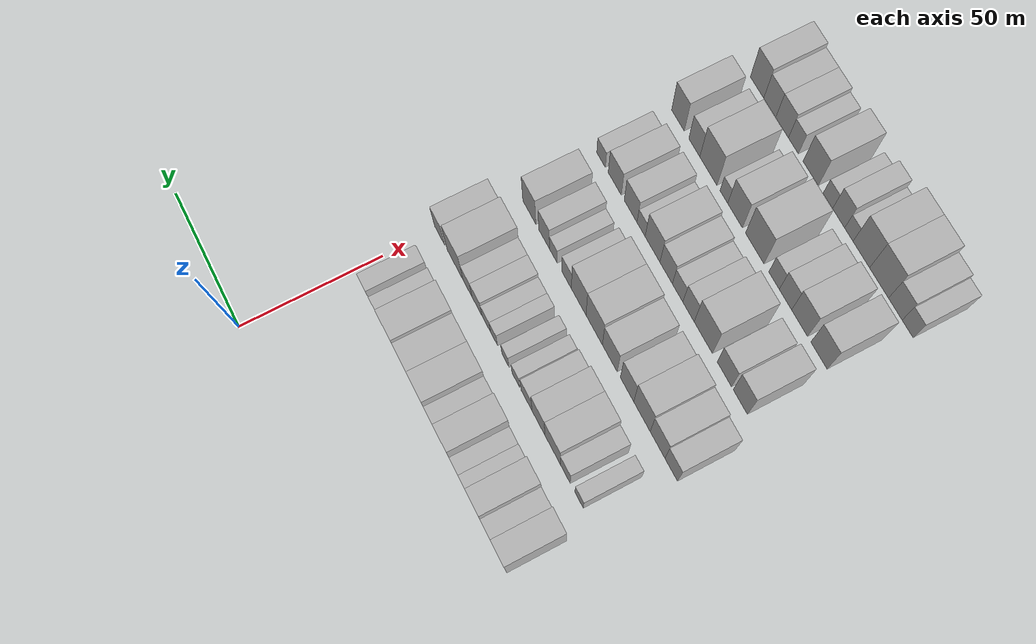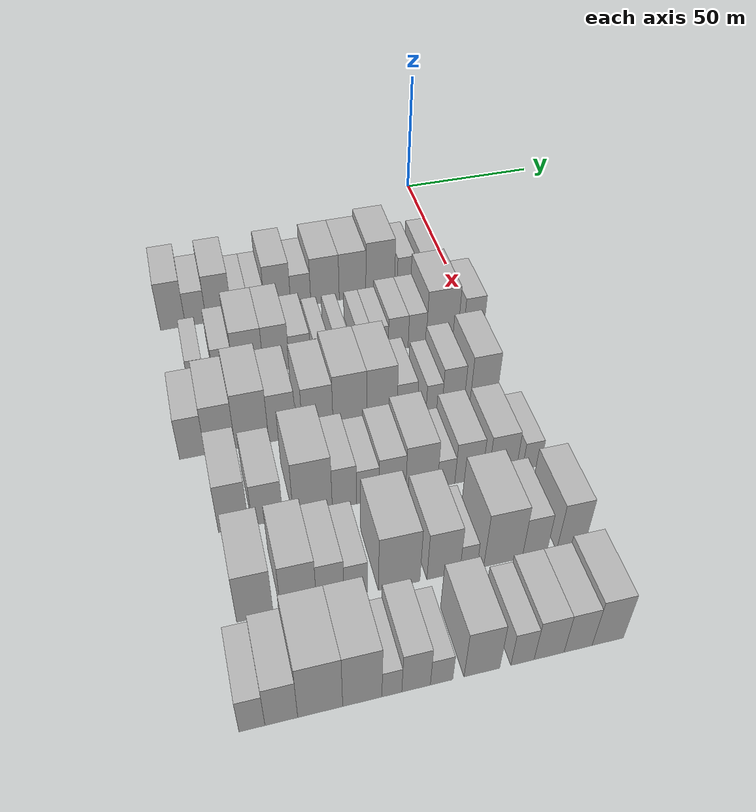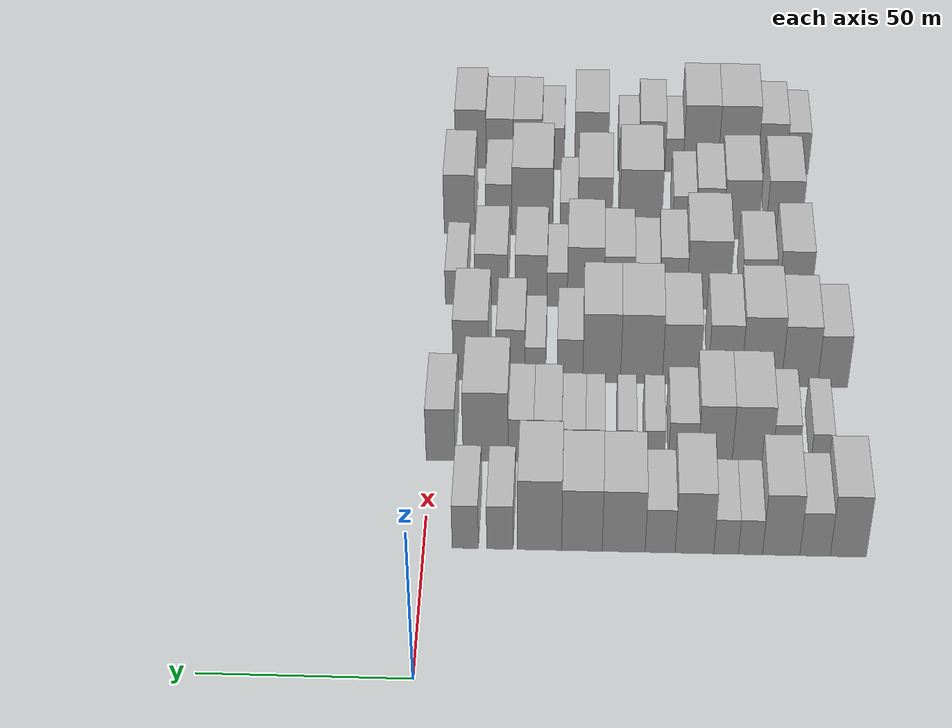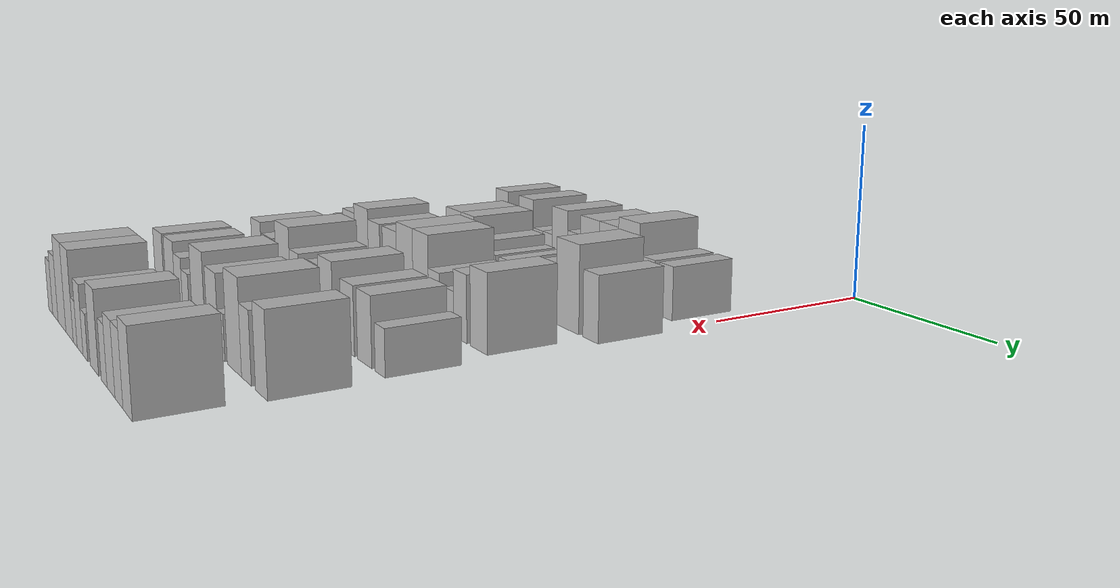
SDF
<sdf version="1.6">
 <world name="default">
  <model name="building_45">
   <static>1</static>
   <pose>50.0000 -101.9597 0 0.000000 0.000000 0.000000</pose>
   <link name="link">
    <pose>0 0 10.50 0 0 0</pose>
    <collision name="collision"><geometry><box><size>20.0000 8.6301 21.0000</size></box></geometry></collision>
    <visual name="visual">
     <cast_shadows>0</cast_shadows>
     <geometry><box><size>20.0000 8.6301 21.0000</size></box></geometry>
     <material>
      <script>
       <uri>model://HANNAS_wall/materials/scripts</uri>
       <uri>model://HANNAS_wall/materials/textures</uri>
       <name>vrc/HANNAS_wall</name>
      </script>
     </material>
    </visual>
   </link>
  </model>
  <model name="building_46">
   <static>1</static>
   <pose>50.0000 -94.0037 0 0.000000 0.000000 0.000000</pose>
   <link name="link">
    <pose>0 0 7.50 0 0 0</pose>
    <collision name="collision"><geometry><box><size>20.0000 7.2819 15.0000</size></box></geometry></collision>
    <visual name="visual">
     <cast_shadows>0</cast_shadows>
     <geometry><box><size>20.0000 7.2819 15.0000</size></box></geometry>
     <material>
      <script>
       <uri>model://HANNAS_wall/materials/scripts</uri>
       <uri>model://HANNAS_wall/materials/textures</uri>
       <name>vrc/HANNAS_wall</name>
      </script>
     </material>
    </visual>
   </link>
  </model>
  <model name="building_47">
   <static>1</static>
   <pose>50.0000 -85.8840 0 0.000000 0.000000 0.000000</pose>
   <link name="link">
    <pose>0 0 10.50 0 0 0</pose>
    <collision name="collision"><geometry><box><size>20.0000 8.9575 21.0000</size></box></geometry></collision>
    <visual name="visual">
     <cast_shadows>0</cast_shadows>
     <geometry><box><size>20.0000 8.9575 21.0000</size></box></geometry>
     <material>
      <script>
       <uri>model://HANNAS_wall/materials/scripts</uri>
       <uri>model://HANNAS_wall/materials/textures</uri>
       <name>vrc/HANNAS_wall</name>
      </script>
     </material>
    </visual>
   </link>
  </model>
  <model name="building_48">
   <static>1</static>
   <pose>50.0000 -78.5048 0 0.000000 0.000000 0.000000</pose>
   <link name="link">
    <pose>0 0 6.00 0 0 0</pose>
    <collision name="collision"><geometry><box><size>20.0000 5.8009 12.0000</size></box></geometry></collision>
    <visual name="visual">
     <cast_shadows>0</cast_shadows>
     <geometry><box><size>20.0000 5.8009 12.0000</size></box></geometry>
     <material>
      <script>
       <uri>model://HANNAS_wall/materials/scripts</uri>
       <uri>model://HANNAS_wall/materials/textures</uri>
       <name>vrc/HANNAS_wall</name>
      </script>
     </material>
    </visual>
   </link>
  </model>
  <model name="building_49">
   <static>1</static>
   <pose>50.0000 -72.6536 0 0.000000 0.000000 0.000000</pose>
   <link name="link">
    <pose>0 0 6.00 0 0 0</pose>
    <collision name="collision"><geometry><box><size>20.0000 5.9014 12.0000</size></box></geometry></collision>
    <visual name="visual">
     <cast_shadows>0</cast_shadows>
     <geometry><box><size>20.0000 5.9014 12.0000</size></box></geometry>
     <material>
      <script>
       <uri>model://HANNAS_wall/materials/scripts</uri>
       <uri>model://HANNAS_wall/materials/textures</uri>
       <name>vrc/HANNAS_wall</name>
      </script>
     </material>
    </visual>
   </link>
  </model>
  <model name="building_50">
   <static>1</static>
   <pose>50.0000 -65.0586 0 0.000000 0.000000 0.000000</pose>
   <link name="link">
    <pose>0 0 10.50 0 0 0</pose>
    <collision name="collision"><geometry><box><size>20.0000 9.2886 21.0000</size></box></geometry></collision>
    <visual name="visual">
     <cast_shadows>0</cast_shadows>
     <geometry><box><size>20.0000 9.2886 21.0000</size></box></geometry>
     <material>
      <script>
       <uri>model://HANNAS_wall/materials/scripts</uri>
       <uri>model://HANNAS_wall/materials/textures</uri>
       <name>vrc/HANNAS_wall</name>
      </script>
     </material>
    </visual>
   </link>
  </model>
  <model name="building_51">
   <static>1</static>
   <pose>50.0000 -56.8045 0 0.000000 0.000000 0.000000</pose>
   <link name="link">
    <pose>0 0 7.50 0 0 0</pose>
    <collision name="collision"><geometry><box><size>20.0000 7.2198 15.0000</size></box></geometry></collision>
    <visual name="visual">
     <cast_shadows>0</cast_shadows>
     <geometry><box><size>20.0000 7.2198 15.0000</size></box></geometry>
     <material>
      <script>
       <uri>model://HANNAS_wall/materials/scripts</uri>
       <uri>model://HANNAS_wall/materials/textures</uri>
       <name>vrc/HANNAS_wall</name>
      </script>
     </material>
    </visual>
   </link>
  </model>
  <model name="building_52">
   <static>1</static>
   <pose>50.0000 -48.0282 0 0.000000 0.000000 0.000000</pose>
   <link name="link">
    <pose>0 0 10.50 0 0 0</pose>
    <collision name="collision"><geometry><box><size>20.0000 10.3327 21.0000</size></box></geometry></collision>
    <visual name="visual">
     <cast_shadows>0</cast_shadows>
     <geometry><box><size>20.0000 10.3327 21.0000</size></box></geometry>
     <material>
      <script>
       <uri>model://HANNAS_wall/materials/scripts</uri>
       <uri>model://HANNAS_wall/materials/textures</uri>
       <name>vrc/HANNAS_wall</name>
      </script>
     </material>
    </visual>
   </link>
  </model>
  <model name="building_53">
   <static>1</static>
   <pose>50.0000 -37.9605 0 0.000000 0.000000 0.000000</pose>
   <link name="link">
    <pose>0 0 10.50 0 0 0</pose>
    <collision name="collision"><geometry><box><size>20.0000 9.8026 21.0000</size></box></geometry></collision>
    <visual name="visual">
     <cast_shadows>0</cast_shadows>
     <geometry><box><size>20.0000 9.8026 21.0000</size></box></geometry>
     <material>
      <script>
       <uri>model://HANNAS_wall/materials/scripts</uri>
       <uri>model://HANNAS_wall/materials/textures</uri>
       <name>vrc/HANNAS_wall</name>
      </script>
     </material>
    </visual>
   </link>
  </model>
  <model name="building_54">
   <static>1</static>
   <pose>50.0000 -27.7547 0 0.000000 0.000000 0.000000</pose>
   <link name="link">
    <pose>0 0 12.00 0 0 0</pose>
    <collision name="collision"><geometry><box><size>20.0000 10.6090 24.0000</size></box></geometry></collision>
    <visual name="visual">
     <cast_shadows>0</cast_shadows>
     <geometry><box><size>20.0000 10.6090 24.0000</size></box></geometry>
     <material>
      <script>
       <uri>model://HANNAS_wall/materials/scripts</uri>
       <uri>model://HANNAS_wall/materials/textures</uri>
       <name>vrc/HANNAS_wall</name>
      </script>
     </material>
    </visual>
   </link>
  </model>
  <model name="building_55">
   <static>1</static>
   <pose>50.0000 -18.2498 0 0.000000 0.000000 0.000000</pose>
   <link name="link">
    <pose>0 0 7.50 0 0 0</pose>
    <collision name="collision"><geometry><box><size>20.0000 6.4007 15.0000</size></box></geometry></collision>
    <visual name="visual">
     <cast_shadows>0</cast_shadows>
     <geometry><box><size>20.0000 6.4007 15.0000</size></box></geometry>
     <material>
      <script>
       <uri>model://HANNAS_wall/materials/scripts</uri>
       <uri>model://HANNAS_wall/materials/textures</uri>
       <name>vrc/HANNAS_wall</name>
      </script>
     </material>
    </visual>
   </link>
  </model>
  <model name="building_56">
   <static>1</static>
   <pose>50.0000 -9.8890 0 0.000000 0.000000 0.000000</pose>
   <link name="link">
    <pose>0 0 7.50 0 0 0</pose>
    <collision name="collision"><geometry><box><size>20.0000 6.3209 15.0000</size></box></geometry></collision>
    <visual name="visual">
     <cast_shadows>0</cast_shadows>
     <geometry><box><size>20.0000 6.3209 15.0000</size></box></geometry>
     <material>
      <script>
       <uri>model://HANNAS_wall/materials/scripts</uri>
       <uri>model://HANNAS_wall/materials/textures</uri>
       <name>vrc/HANNAS_wall</name>
      </script>
     </material>
    </visual>
   </link>
  </model>
  <model name="building_163">
   <static>1</static>
   <pose>79.0000 -97.3194 0 0.000000 0.000000 0.000000</pose>
   <link name="link">
    <pose>0 0 6.00 0 0 0</pose>
    <collision name="collision"><geometry><box><size>20.0000 5.3989 12.0000</size></box></geometry></collision>
    <visual name="visual">
     <cast_shadows>0</cast_shadows>
     <geometry><box><size>20.0000 5.3989 12.0000</size></box></geometry>
     <material>
      <script>
       <uri>model://HANNAS_wall/materials/scripts</uri>
       <uri>model://HANNAS_wall/materials/textures</uri>
       <name>vrc/HANNAS_wall</name>
      </script>
     </material>
    </visual>
   </link>
  </model>
  <model name="building_164">
   <static>1</static>
   <pose>79.0000 -88.3522 0 0.000000 0.000000 0.000000</pose>
   <link name="link">
    <pose>0 0 7.50 0 0 0</pose>
    <collision name="collision"><geometry><box><size>20.0000 6.5355 15.0000</size></box></geometry></collision>
    <visual name="visual">
     <cast_shadows>0</cast_shadows>
     <geometry><box><size>20.0000 6.5355 15.0000</size></box></geometry>
     <material>
      <script>
       <uri>model://HANNAS_wall/materials/scripts</uri>
       <uri>model://HANNAS_wall/materials/textures</uri>
       <name>vrc/HANNAS_wall</name>
      </script>
     </material>
    </visual>
   </link>
  </model>
  <model name="building_165">
   <static>1</static>
   <pose>79.0000 -80.0860 0 0.000000 0.000000 0.000000</pose>
   <link name="link">
    <pose>0 0 10.50 0 0 0</pose>
    <collision name="collision"><geometry><box><size>20.0000 9.9968 21.0000</size></box></geometry></collision>
    <visual name="visual">
     <cast_shadows>0</cast_shadows>
     <geometry><box><size>20.0000 9.9968 21.0000</size></box></geometry>
     <material>
      <script>
       <uri>model://HANNAS_wall/materials/scripts</uri>
       <uri>model://HANNAS_wall/materials/textures</uri>
       <name>vrc/HANNAS_wall</name>
      </script>
     </material>
    </visual>
   </link>
  </model>
  <model name="building_166">
   <static>1</static>
   <pose>79.0000 -70.8031 0 0.000000 0.000000 0.000000</pose>
   <link name="link">
    <pose>0 0 10.50 0 0 0</pose>
    <collision name="collision"><geometry><box><size>20.0000 8.5691 21.0000</size></box></geometry></collision>
    <visual name="visual">
     <cast_shadows>0</cast_shadows>
     <geometry><box><size>20.0000 8.5691 21.0000</size></box></geometry>
     <material>
      <script>
       <uri>model://HANNAS_wall/materials/scripts</uri>
       <uri>model://HANNAS_wall/materials/textures</uri>
       <name>vrc/HANNAS_wall</name>
      </script>
     </material>
    </visual>
   </link>
  </model>
  <model name="building_167">
   <static>1</static>
   <pose>79.0000 -62.8693 0 0.000000 0.000000 0.000000</pose>
   <link name="link">
    <pose>0 0 7.50 0 0 0</pose>
    <collision name="collision"><geometry><box><size>20.0000 7.2984 15.0000</size></box></geometry></collision>
    <visual name="visual">
     <cast_shadows>0</cast_shadows>
     <geometry><box><size>20.0000 7.2984 15.0000</size></box></geometry>
     <material>
      <script>
       <uri>model://HANNAS_wall/materials/scripts</uri>
       <uri>model://HANNAS_wall/materials/textures</uri>
       <name>vrc/HANNAS_wall</name>
      </script>
     </material>
    </visual>
   </link>
  </model>
  <model name="building_168">
   <static>1</static>
   <pose>79.0000 -55.6738 0 0.000000 0.000000 0.000000</pose>
   <link name="link">
    <pose>0 0 6.00 0 0 0</pose>
    <collision name="collision"><geometry><box><size>20.0000 5.0927 12.0000</size></box></geometry></collision>
    <visual name="visual">
     <cast_shadows>0</cast_shadows>
     <geometry><box><size>20.0000 5.0927 12.0000</size></box></geometry>
     <material>
      <script>
       <uri>model://HANNAS_wall/materials/scripts</uri>
       <uri>model://HANNAS_wall/materials/textures</uri>
       <name>vrc/HANNAS_wall</name>
      </script>
     </material>
    </visual>
   </link>
  </model>
  <model name="building_169">
   <static>1</static>
   <pose>79.0000 -48.7028 0 0.000000 0.000000 0.000000</pose>
   <link name="link">
    <pose>0 0 6.00 0 0 0</pose>
    <collision name="collision"><geometry><box><size>20.0000 4.8493 12.0000</size></box></geometry></collision>
    <visual name="visual">
     <cast_shadows>0</cast_shadows>
     <geometry><box><size>20.0000 4.8493 12.0000</size></box></geometry>
     <material>
      <script>
       <uri>model://HANNAS_wall/materials/scripts</uri>
       <uri>model://HANNAS_wall/materials/textures</uri>
       <name>vrc/HANNAS_wall</name>
      </script>
     </material>
    </visual>
   </link>
  </model>
  <model name="building_170">
   <static>1</static>
   <pose>79.0000 -40.8667 0 0.000000 0.000000 0.000000</pose>
   <link name="link">
    <pose>0 0 6.00 0 0 0</pose>
    <collision name="collision"><geometry><box><size>20.0000 4.8230 12.0000</size></box></geometry></collision>
    <visual name="visual">
     <cast_shadows>0</cast_shadows>
     <geometry><box><size>20.0000 4.8230 12.0000</size></box></geometry>
     <material>
      <script>
       <uri>model://HANNAS_wall/materials/scripts</uri>
       <uri>model://HANNAS_wall/materials/textures</uri>
       <name>vrc/HANNAS_wall</name>
      </script>
     </material>
    </visual>
   </link>
  </model>
  <model name="building_171">
   <static>1</static>
   <pose>79.0000 -35.5066 0 0.000000 0.000000 0.000000</pose>
   <link name="link">
    <pose>0 0 6.00 0 0 0</pose>
    <collision name="collision"><geometry><box><size>20.0000 5.8972 12.0000</size></box></geometry></collision>
    <visual name="visual">
     <cast_shadows>0</cast_shadows>
     <geometry><box><size>20.0000 5.8972 12.0000</size></box></geometry>
     <material>
      <script>
       <uri>model://HANNAS_wall/materials/scripts</uri>
       <uri>model://HANNAS_wall/materials/textures</uri>
       <name>vrc/HANNAS_wall</name>
      </script>
     </material>
    </visual>
   </link>
  </model>
  <model name="building_172">
   <static>1</static>
   <pose>79.0000 -29.0634 0 0.000000 0.000000 0.000000</pose>
   <link name="link">
    <pose>0 0 7.50 0 0 0</pose>
    <collision name="collision"><geometry><box><size>20.0000 6.9892 15.0000</size></box></geometry></collision>
    <visual name="visual">
     <cast_shadows>0</cast_shadows>
     <geometry><box><size>20.0000 6.9892 15.0000</size></box></geometry>
     <material>
      <script>
       <uri>model://HANNAS_wall/materials/scripts</uri>
       <uri>model://HANNAS_wall/materials/textures</uri>
       <name>vrc/HANNAS_wall</name>
      </script>
     </material>
    </visual>
   </link>
  </model>
  <model name="building_173">
   <static>1</static>
   <pose>79.0000 -22.3936 0 0.000000 0.000000 0.000000</pose>
   <link name="link">
    <pose>0 0 7.50 0 0 0</pose>
    <collision name="collision"><geometry><box><size>20.0000 6.3504 15.0000</size></box></geometry></collision>
    <visual name="visual">
     <cast_shadows>0</cast_shadows>
     <geometry><box><size>20.0000 6.3504 15.0000</size></box></geometry>
     <material>
      <script>
       <uri>model://HANNAS_wall/materials/scripts</uri>
       <uri>model://HANNAS_wall/materials/textures</uri>
       <name>vrc/HANNAS_wall</name>
      </script>
     </material>
    </visual>
   </link>
  </model>
  <model name="building_174">
   <static>1</static>
   <pose>79.0000 -13.5965 0 0.000000 0.000000 0.000000</pose>
   <link name="link">
    <pose>0 0 12.00 0 0 0</pose>
    <collision name="collision"><geometry><box><size>20.0000 11.2436 24.0000</size></box></geometry></collision>
    <visual name="visual">
     <cast_shadows>0</cast_shadows>
     <geometry><box><size>20.0000 11.2436 24.0000</size></box></geometry>
     <material>
      <script>
       <uri>model://HANNAS_wall/materials/scripts</uri>
       <uri>model://HANNAS_wall/materials/textures</uri>
       <name>vrc/HANNAS_wall</name>
      </script>
     </material>
    </visual>
   </link>
  </model>
  <model name="building_175">
   <static>1</static>
   <pose>79.0000 -2.3527 0 0.000000 0.000000 0.000000</pose>
   <link name="link">
    <pose>0 0 9.00 0 0 0</pose>
    <collision name="collision"><geometry><box><size>20.0000 7.2441 18.0000</size></box></geometry></collision>
    <visual name="visual">
     <cast_shadows>0</cast_shadows>
     <geometry><box><size>20.0000 7.2441 18.0000</size></box></geometry>
     <material>
      <script>
       <uri>model://HANNAS_wall/materials/scripts</uri>
       <uri>model://HANNAS_wall/materials/textures</uri>
       <name>vrc/HANNAS_wall</name>
      </script>
     </material>
    </visual>
   </link>
  </model>
  <model name="building_277">
   <static>1</static>
   <pose>108.0000 -102.1919 0 0.000000 0.000000 0.000000</pose>
   <link name="link">
    <pose>0 0 9.00 0 0 0</pose>
    <collision name="collision"><geometry><box><size>20.0000 7.8176 18.0000</size></box></geometry></collision>
    <visual name="visual">
     <cast_shadows>0</cast_shadows>
     <geometry><box><size>20.0000 7.8176 18.0000</size></box></geometry>
     <material>
      <script>
       <uri>model://HANNAS_wall/materials/scripts</uri>
       <uri>model://HANNAS_wall/materials/textures</uri>
       <name>vrc/HANNAS_wall</name>
      </script>
     </material>
    </visual>
   </link>
  </model>
  <model name="building_278">
   <static>1</static>
   <pose>108.0000 -93.6365 0 0.000000 0.000000 0.000000</pose>
   <link name="link">
    <pose>0 0 10.50 0 0 0</pose>
    <collision name="collision"><geometry><box><size>20.0000 9.2932 21.0000</size></box></geometry></collision>
    <visual name="visual">
     <cast_shadows>0</cast_shadows>
     <geometry><box><size>20.0000 9.2932 21.0000</size></box></geometry>
     <material>
      <script>
       <uri>model://HANNAS_wall/materials/scripts</uri>
       <uri>model://HANNAS_wall/materials/textures</uri>
       <name>vrc/HANNAS_wall</name>
      </script>
     </material>
    </visual>
   </link>
  </model>
  <model name="building_279">
   <static>1</static>
   <pose>108.0000 -83.7644 0 0.000000 0.000000 0.000000</pose>
   <link name="link">
    <pose>0 0 12.00 0 0 0</pose>
    <collision name="collision"><geometry><box><size>20.0000 10.4508 24.0000</size></box></geometry></collision>
    <visual name="visual">
     <cast_shadows>0</cast_shadows>
     <geometry><box><size>20.0000 10.4508 24.0000</size></box></geometry>
     <material>
      <script>
       <uri>model://HANNAS_wall/materials/scripts</uri>
       <uri>model://HANNAS_wall/materials/textures</uri>
       <name>vrc/HANNAS_wall</name>
      </script>
     </material>
    </visual>
   </link>
  </model>
  <model name="building_280">
   <static>1</static>
   <pose>108.0000 -74.2215 0 0.000000 0.000000 0.000000</pose>
   <link name="link">
    <pose>0 0 10.50 0 0 0</pose>
    <collision name="collision"><geometry><box><size>20.0000 8.6350 21.0000</size></box></geometry></collision>
    <visual name="visual">
     <cast_shadows>0</cast_shadows>
     <geometry><box><size>20.0000 8.6350 21.0000</size></box></geometry>
     <material>
      <script>
       <uri>model://HANNAS_wall/materials/scripts</uri>
       <uri>model://HANNAS_wall/materials/textures</uri>
       <name>vrc/HANNAS_wall</name>
      </script>
     </material>
    </visual>
   </link>
  </model>
  <model name="building_281">
   <static>1</static>
   <pose>108.0000 -63.0394 0 0.000000 0.000000 0.000000</pose>
   <link name="link">
    <pose>0 0 10.50 0 0 0</pose>
    <collision name="collision"><geometry><box><size>20.0000 9.7291 21.0000</size></box></geometry></collision>
    <visual name="visual">
     <cast_shadows>0</cast_shadows>
     <geometry><box><size>20.0000 9.7291 21.0000</size></box></geometry>
     <material>
      <script>
       <uri>model://HANNAS_wall/materials/scripts</uri>
       <uri>model://HANNAS_wall/materials/textures</uri>
       <name>vrc/HANNAS_wall</name>
      </script>
     </material>
    </visual>
   </link>
  </model>
  <model name="building_282">
   <static>1</static>
   <pose>108.0000 -52.7591 0 0.000000 0.000000 0.000000</pose>
   <link name="link">
    <pose>0 0 12.00 0 0 0</pose>
    <collision name="collision"><geometry><box><size>20.0000 10.8315 24.0000</size></box></geometry></collision>
    <visual name="visual">
     <cast_shadows>0</cast_shadows>
     <geometry><box><size>20.0000 10.8315 24.0000</size></box></geometry>
     <material>
      <script>
       <uri>model://HANNAS_wall/materials/scripts</uri>
       <uri>model://HANNAS_wall/materials/textures</uri>
       <name>vrc/HANNAS_wall</name>
      </script>
     </material>
    </visual>
   </link>
  </model>
  <model name="building_283">
   <static>1</static>
   <pose>108.0000 -42.4474 0 0.000000 0.000000 0.000000</pose>
   <link name="link">
    <pose>0 0 12.00 0 0 0</pose>
    <collision name="collision"><geometry><box><size>20.0000 9.7919 24.0000</size></box></geometry></collision>
    <visual name="visual">
     <cast_shadows>0</cast_shadows>
     <geometry><box><size>20.0000 9.7919 24.0000</size></box></geometry>
     <material>
      <script>
       <uri>model://HANNAS_wall/materials/scripts</uri>
       <uri>model://HANNAS_wall/materials/textures</uri>
       <name>vrc/HANNAS_wall</name>
      </script>
     </material>
    </visual>
   </link>
  </model>
  <model name="building_284">
   <static>1</static>
   <pose>108.0000 -34.2298 0 0.000000 0.000000 0.000000</pose>
   <link name="link">
    <pose>0 0 7.50 0 0 0</pose>
    <collision name="collision"><geometry><box><size>20.0000 6.6433 15.0000</size></box></geometry></collision>
    <visual name="visual">
     <cast_shadows>0</cast_shadows>
     <geometry><box><size>20.0000 6.6433 15.0000</size></box></geometry>
     <material>
      <script>
       <uri>model://HANNAS_wall/materials/scripts</uri>
       <uri>model://HANNAS_wall/materials/textures</uri>
       <name>vrc/HANNAS_wall</name>
      </script>
     </material>
    </visual>
   </link>
  </model>
  <model name="building_285">
   <static>1</static>
   <pose>108.0000 -25.2505 0 0.000000 0.000000 0.000000</pose>
   <link name="link">
    <pose>0 0 6.00 0 0 0</pose>
    <collision name="collision"><geometry><box><size>20.0000 5.3153 12.0000</size></box></geometry></collision>
    <visual name="visual">
     <cast_shadows>0</cast_shadows>
     <geometry><box><size>20.0000 5.3153 12.0000</size></box></geometry>
     <material>
      <script>
       <uri>model://HANNAS_wall/materials/scripts</uri>
       <uri>model://HANNAS_wall/materials/textures</uri>
       <name>vrc/HANNAS_wall</name>
      </script>
     </material>
    </visual>
   </link>
  </model>
  <model name="building_286">
   <static>1</static>
   <pose>108.0000 -18.8956 0 0.000000 0.000000 0.000000</pose>
   <link name="link">
    <pose>0 0 9.00 0 0 0</pose>
    <collision name="collision"><geometry><box><size>20.0000 7.3945 18.0000</size></box></geometry></collision>
    <visual name="visual">
     <cast_shadows>0</cast_shadows>
     <geometry><box><size>20.0000 7.3945 18.0000</size></box></geometry>
     <material>
      <script>
       <uri>model://HANNAS_wall/materials/scripts</uri>
       <uri>model://HANNAS_wall/materials/textures</uri>
       <name>vrc/HANNAS_wall</name>
      </script>
     </material>
    </visual>
   </link>
  </model>
  <model name="building_287">
   <static>1</static>
   <pose>108.0000 -8.6545 0 0.000000 0.000000 0.000000</pose>
   <link name="link">
    <pose>0 0 10.50 0 0 0</pose>
    <collision name="collision"><geometry><box><size>20.0000 9.0876 21.0000</size></box></geometry></collision>
    <visual name="visual">
     <cast_shadows>0</cast_shadows>
     <geometry><box><size>20.0000 9.0876 21.0000</size></box></geometry>
     <material>
      <script>
       <uri>model://HANNAS_wall/materials/scripts</uri>
       <uri>model://HANNAS_wall/materials/textures</uri>
       <name>vrc/HANNAS_wall</name>
      </script>
     </material>
    </visual>
   </link>
  </model>
  <model name="building_396">
   <static>1</static>
   <pose>137.0000 -93.8473 0 0.000000 0.000000 0.000000</pose>
   <link name="link">
    <pose>0 0 10.50 0 0 0</pose>
    <collision name="collision"><geometry><box><size>20.0000 8.7410 21.0000</size></box></geometry></collision>
    <visual name="visual">
     <cast_shadows>0</cast_shadows>
     <geometry><box><size>20.0000 8.7410 21.0000</size></box></geometry>
     <material>
      <script>
       <uri>model://HANNAS_wall/materials/scripts</uri>
       <uri>model://HANNAS_wall/materials/textures</uri>
       <name>vrc/HANNAS_wall</name>
      </script>
     </material>
    </visual>
   </link>
  </model>
  <model name="building_397">
   <static>1</static>
   <pose>137.0000 -84.0086 0 0.000000 0.000000 0.000000</pose>
   <link name="link">
    <pose>0 0 9.00 0 0 0</pose>
    <collision name="collision"><geometry><box><size>20.0000 8.9364 18.0000</size></box></geometry></collision>
    <visual name="visual">
     <cast_shadows>0</cast_shadows>
     <geometry><box><size>20.0000 8.9364 18.0000</size></box></geometry>
     <material>
      <script>
       <uri>model://HANNAS_wall/materials/scripts</uri>
       <uri>model://HANNAS_wall/materials/textures</uri>
       <name>vrc/HANNAS_wall</name>
      </script>
     </material>
    </visual>
   </link>
  </model>
  <model name="building_398">
   <static>1</static>
   <pose>137.0000 -70.7728 0 0.000000 0.000000 0.000000</pose>
   <link name="link">
    <pose>0 0 12.00 0 0 0</pose>
    <collision name="collision"><geometry><box><size>20.0000 11.5351 24.0000</size></box></geometry></collision>
    <visual name="visual">
     <cast_shadows>0</cast_shadows>
     <geometry><box><size>20.0000 11.5351 24.0000</size></box></geometry>
     <material>
      <script>
       <uri>model://HANNAS_wall/materials/scripts</uri>
       <uri>model://HANNAS_wall/materials/textures</uri>
       <name>vrc/HANNAS_wall</name>
      </script>
     </material>
    </visual>
   </link>
  </model>
  <model name="building_399">
   <static>1</static>
   <pose>137.0000 -61.3844 0 0.000000 0.000000 0.000000</pose>
   <link name="link">
    <pose>0 0 9.00 0 0 0</pose>
    <collision name="collision"><geometry><box><size>20.0000 7.2417 18.0000</size></box></geometry></collision>
    <visual name="visual">
     <cast_shadows>0</cast_shadows>
     <geometry><box><size>20.0000 7.2417 18.0000</size></box></geometry>
     <material>
      <script>
       <uri>model://HANNAS_wall/materials/scripts</uri>
       <uri>model://HANNAS_wall/materials/textures</uri>
       <name>vrc/HANNAS_wall</name>
      </script>
     </material>
    </visual>
   </link>
  </model>
  <model name="building_400">
   <static>1</static>
   <pose>137.0000 -54.3740 0 0.000000 0.000000 0.000000</pose>
   <link name="link">
    <pose>0 0 7.50 0 0 0</pose>
    <collision name="collision"><geometry><box><size>20.0000 6.7791 15.0000</size></box></geometry></collision>
    <visual name="visual">
     <cast_shadows>0</cast_shadows>
     <geometry><box><size>20.0000 6.7791 15.0000</size></box></geometry>
     <material>
      <script>
       <uri>model://HANNAS_wall/materials/scripts</uri>
       <uri>model://HANNAS_wall/materials/textures</uri>
       <name>vrc/HANNAS_wall</name>
      </script>
     </material>
    </visual>
   </link>
  </model>
  <model name="building_401">
   <static>1</static>
   <pose>137.0000 -46.9338 0 0.000000 0.000000 0.000000</pose>
   <link name="link">
    <pose>0 0 9.00 0 0 0</pose>
    <collision name="collision"><geometry><box><size>20.0000 8.1012 18.0000</size></box></geometry></collision>
    <visual name="visual">
     <cast_shadows>0</cast_shadows>
     <geometry><box><size>20.0000 8.1012 18.0000</size></box></geometry>
     <material>
      <script>
       <uri>model://HANNAS_wall/materials/scripts</uri>
       <uri>model://HANNAS_wall/materials/textures</uri>
       <name>vrc/HANNAS_wall</name>
      </script>
     </material>
    </visual>
   </link>
  </model>
  <model name="building_402">
   <static>1</static>
   <pose>137.0000 -38.0000 0 0.000000 0.000000 0.000000</pose>
   <link name="link">
    <pose>0 0 10.50 0 0 0</pose>
    <collision name="collision"><geometry><box><size>20.0000 9.7663 21.0000</size></box></geometry></collision>
    <visual name="visual">
     <cast_shadows>0</cast_shadows>
     <geometry><box><size>20.0000 9.7663 21.0000</size></box></geometry>
     <material>
      <script>
       <uri>model://HANNAS_wall/materials/scripts</uri>
       <uri>model://HANNAS_wall/materials/textures</uri>
       <name>vrc/HANNAS_wall</name>
      </script>
     </material>
    </visual>
   </link>
  </model>
  <model name="building_403">
   <static>1</static>
   <pose>137.0000 -30.4027 0 0.000000 0.000000 0.000000</pose>
   <link name="link">
    <pose>0 0 6.00 0 0 0</pose>
    <collision name="collision"><geometry><box><size>20.0000 5.4282 12.0000</size></box></geometry></collision>
    <visual name="visual">
     <cast_shadows>0</cast_shadows>
     <geometry><box><size>20.0000 5.4282 12.0000</size></box></geometry>
     <material>
      <script>
       <uri>model://HANNAS_wall/materials/scripts</uri>
       <uri>model://HANNAS_wall/materials/textures</uri>
       <name>vrc/HANNAS_wall</name>
      </script>
     </material>
    </visual>
   </link>
  </model>
  <model name="building_404">
   <static>1</static>
   <pose>137.0000 -23.4071 0 0.000000 0.000000 0.000000</pose>
   <link name="link">
    <pose>0 0 9.00 0 0 0</pose>
    <collision name="collision"><geometry><box><size>20.0000 8.5631 18.0000</size></box></geometry></collision>
    <visual name="visual">
     <cast_shadows>0</cast_shadows>
     <geometry><box><size>20.0000 8.5631 18.0000</size></box></geometry>
     <material>
      <script>
       <uri>model://HANNAS_wall/materials/scripts</uri>
       <uri>model://HANNAS_wall/materials/textures</uri>
       <name>vrc/HANNAS_wall</name>
      </script>
     </material>
    </visual>
   </link>
  </model>
  <model name="building_405">
   <static>1</static>
   <pose>137.0000 -12.7074 0 0.000000 0.000000 0.000000</pose>
   <link name="link">
    <pose>0 0 9.00 0 0 0</pose>
    <collision name="collision"><geometry><box><size>20.0000 8.8364 18.0000</size></box></geometry></collision>
    <visual name="visual">
     <cast_shadows>0</cast_shadows>
     <geometry><box><size>20.0000 8.8364 18.0000</size></box></geometry>
     <material>
      <script>
       <uri>model://HANNAS_wall/materials/scripts</uri>
       <uri>model://HANNAS_wall/materials/textures</uri>
       <name>vrc/HANNAS_wall</name>
      </script>
     </material>
    </visual>
   </link>
  </model>
  <model name="building_406">
   <static>1</static>
   <pose>137.0000 -3.3515 0 0.000000 0.000000 0.000000</pose>
   <link name="link">
    <pose>0 0 6.00 0 0 0</pose>
    <collision name="collision"><geometry><box><size>20.0000 5.8753 12.0000</size></box></geometry></collision>
    <visual name="visual">
     <cast_shadows>0</cast_shadows>
     <geometry><box><size>20.0000 5.8753 12.0000</size></box></geometry>
     <material>
      <script>
       <uri>model://HANNAS_wall/materials/scripts</uri>
       <uri>model://HANNAS_wall/materials/textures</uri>
       <name>vrc/HANNAS_wall</name>
      </script>
     </material>
    </visual>
   </link>
  </model>
  <model name="building_504">
   <static>1</static>
   <pose>166.0000 -92.5053 0 0.000000 0.000000 0.000000</pose>
   <link name="link">
    <pose>0 0 10.50 0 0 0</pose>
    <collision name="collision"><geometry><box><size>20.0000 9.8160 21.0000</size></box></geometry></collision>
    <visual name="visual">
     <cast_shadows>0</cast_shadows>
     <geometry><box><size>20.0000 9.8160 21.0000</size></box></geometry>
     <material>
      <script>
       <uri>model://HANNAS_wall/materials/scripts</uri>
       <uri>model://HANNAS_wall/materials/textures</uri>
       <name>vrc/HANNAS_wall</name>
      </script>
     </material>
    </visual>
   </link>
  </model>
  <model name="building_505">
   <static>1</static>
   <pose>166.0000 -80.7321 0 0.000000 0.000000 0.000000</pose>
   <link name="link">
    <pose>0 0 10.50 0 0 0</pose>
    <collision name="collision"><geometry><box><size>20.0000 9.7304 21.0000</size></box></geometry></collision>
    <visual name="visual">
     <cast_shadows>0</cast_shadows>
     <geometry><box><size>20.0000 9.7304 21.0000</size></box></geometry>
     <material>
      <script>
       <uri>model://HANNAS_wall/materials/scripts</uri>
       <uri>model://HANNAS_wall/materials/textures</uri>
       <name>vrc/HANNAS_wall</name>
      </script>
     </material>
    </visual>
   </link>
  </model>
  <model name="building_506">
   <static>1</static>
   <pose>166.0000 -72.0662 0 0.000000 0.000000 0.000000</pose>
   <link name="link">
    <pose>0 0 9.00 0 0 0</pose>
    <collision name="collision"><geometry><box><size>20.0000 7.6014 18.0000</size></box></geometry></collision>
    <visual name="visual">
     <cast_shadows>0</cast_shadows>
     <geometry><box><size>20.0000 7.6014 18.0000</size></box></geometry>
     <material>
      <script>
       <uri>model://HANNAS_wall/materials/scripts</uri>
       <uri>model://HANNAS_wall/materials/textures</uri>
       <name>vrc/HANNAS_wall</name>
      </script>
     </material>
    </visual>
   </link>
  </model>
  <model name="building_507">
   <static>1</static>
   <pose>166.0000 -65.0018 0 0.000000 0.000000 0.000000</pose>
   <link name="link">
    <pose>0 0 7.50 0 0 0</pose>
    <collision name="collision"><geometry><box><size>20.0000 6.5275 15.0000</size></box></geometry></collision>
    <visual name="visual">
     <cast_shadows>0</cast_shadows>
     <geometry><box><size>20.0000 6.5275 15.0000</size></box></geometry>
     <material>
      <script>
       <uri>model://HANNAS_wall/materials/scripts</uri>
       <uri>model://HANNAS_wall/materials/textures</uri>
       <name>vrc/HANNAS_wall</name>
      </script>
     </material>
    </visual>
   </link>
  </model>
  <model name="building_508">
   <static>1</static>
   <pose>166.0000 -52.8813 0 0.000000 0.000000 0.000000</pose>
   <link name="link">
    <pose>0 0 12.00 0 0 0</pose>
    <collision name="collision"><geometry><box><size>20.0000 11.7135 24.0000</size></box></geometry></collision>
    <visual name="visual">
     <cast_shadows>0</cast_shadows>
     <geometry><box><size>20.0000 11.7135 24.0000</size></box></geometry>
     <material>
      <script>
       <uri>model://HANNAS_wall/materials/scripts</uri>
       <uri>model://HANNAS_wall/materials/textures</uri>
       <name>vrc/HANNAS_wall</name>
      </script>
     </material>
    </visual>
   </link>
  </model>
  <model name="building_509">
   <static>1</static>
   <pose>166.0000 -40.3043 0 0.000000 0.000000 0.000000</pose>
   <link name="link">
    <pose>0 0 10.50 0 0 0</pose>
    <collision name="collision"><geometry><box><size>20.0000 9.4406 21.0000</size></box></geometry></collision>
    <visual name="visual">
     <cast_shadows>0</cast_shadows>
     <geometry><box><size>20.0000 9.4406 21.0000</size></box></geometry>
     <material>
      <script>
       <uri>model://HANNAS_wall/materials/scripts</uri>
       <uri>model://HANNAS_wall/materials/textures</uri>
       <name>vrc/HANNAS_wall</name>
      </script>
     </material>
    </visual>
   </link>
  </model>
  <model name="building_510">
   <static>1</static>
   <pose>166.0000 -33.1103 0 0.000000 0.000000 0.000000</pose>
   <link name="link">
    <pose>0 0 6.00 0 0 0</pose>
    <collision name="collision"><geometry><box><size>20.0000 4.9473 12.0000</size></box></geometry></collision>
    <visual name="visual">
     <cast_shadows>0</cast_shadows>
     <geometry><box><size>20.0000 4.9473 12.0000</size></box></geometry>
     <material>
      <script>
       <uri>model://HANNAS_wall/materials/scripts</uri>
       <uri>model://HANNAS_wall/materials/textures</uri>
       <name>vrc/HANNAS_wall</name>
      </script>
     </material>
    </visual>
   </link>
  </model>
  <model name="building_511">
   <static>1</static>
   <pose>166.0000 -22.9989 0 0.000000 0.000000 0.000000</pose>
   <link name="link">
    <pose>0 0 12.00 0 0 0</pose>
    <collision name="collision"><geometry><box><size>20.0000 11.2755 24.0000</size></box></geometry></collision>
    <visual name="visual">
     <cast_shadows>0</cast_shadows>
     <geometry><box><size>20.0000 11.2755 24.0000</size></box></geometry>
     <material>
      <script>
       <uri>model://HANNAS_wall/materials/scripts</uri>
       <uri>model://HANNAS_wall/materials/textures</uri>
       <name>vrc/HANNAS_wall</name>
      </script>
     </material>
    </visual>
   </link>
  </model>
  <model name="building_512">
   <static>1</static>
   <pose>166.0000 -13.7004 0 0.000000 0.000000 0.000000</pose>
   <link name="link">
    <pose>0 0 9.00 0 0 0</pose>
    <collision name="collision"><geometry><box><size>20.0000 7.3214 18.0000</size></box></geometry></collision>
    <visual name="visual">
     <cast_shadows>0</cast_shadows>
     <geometry><box><size>20.0000 7.3214 18.0000</size></box></geometry>
     <material>
      <script>
       <uri>model://HANNAS_wall/materials/scripts</uri>
       <uri>model://HANNAS_wall/materials/textures</uri>
       <name>vrc/HANNAS_wall</name>
      </script>
     </material>
    </visual>
   </link>
  </model>
  <model name="building_513">
   <static>1</static>
   <pose>166.0000 -2.7851 0 0.000000 0.000000 0.000000</pose>
   <link name="link">
    <pose>0 0 10.50 0 0 0</pose>
    <collision name="collision"><geometry><box><size>20.0000 8.5092 21.0000</size></box></geometry></collision>
    <visual name="visual">
     <cast_shadows>0</cast_shadows>
     <geometry><box><size>20.0000 8.5092 21.0000</size></box></geometry>
     <material>
      <script>
       <uri>model://HANNAS_wall/materials/scripts</uri>
       <uri>model://HANNAS_wall/materials/textures</uri>
       <name>vrc/HANNAS_wall</name>
      </script>
     </material>
    </visual>
   </link>
  </model>
  <model name="building_617">
   <static>1</static>
   <pose>195.0000 -98.0794 0 0.000000 0.000000 0.000000</pose>
   <link name="link">
    <pose>0 0 7.50 0 0 0</pose>
    <collision name="collision"><geometry><box><size>20.0000 6.4051 15.0000</size></box></geometry></collision>
    <visual name="visual">
     <cast_shadows>0</cast_shadows>
     <geometry><box><size>20.0000 6.4051 15.0000</size></box></geometry>
     <material>
      <script>
       <uri>model://HANNAS_wall/materials/scripts</uri>
       <uri>model://HANNAS_wall/materials/textures</uri>
       <name>vrc/HANNAS_wall</name>
      </script>
     </material>
    </visual>
   </link>
  </model>
  <model name="building_618">
   <static>1</static>
   <pose>195.0000 -90.8152 0 0.000000 0.000000 0.000000</pose>
   <link name="link">
    <pose>0 0 9.00 0 0 0</pose>
    <collision name="collision"><geometry><box><size>20.0000 8.1234 18.0000</size></box></geometry></collision>
    <visual name="visual">
     <cast_shadows>0</cast_shadows>
     <geometry><box><size>20.0000 8.1234 18.0000</size></box></geometry>
     <material>
      <script>
       <uri>model://HANNAS_wall/materials/scripts</uri>
       <uri>model://HANNAS_wall/materials/textures</uri>
       <name>vrc/HANNAS_wall</name>
      </script>
     </material>
    </visual>
   </link>
  </model>
  <model name="building_619">
   <static>1</static>
   <pose>195.0000 -81.0931 0 0.000000 0.000000 0.000000</pose>
   <link name="link">
    <pose>0 0 12.00 0 0 0</pose>
    <collision name="collision"><geometry><box><size>20.0000 11.3207 24.0000</size></box></geometry></collision>
    <visual name="visual">
     <cast_shadows>0</cast_shadows>
     <geometry><box><size>20.0000 11.3207 24.0000</size></box></geometry>
     <material>
      <script>
       <uri>model://HANNAS_wall/materials/scripts</uri>
       <uri>model://HANNAS_wall/materials/textures</uri>
       <name>vrc/HANNAS_wall</name>
      </script>
     </material>
    </visual>
   </link>
  </model>
  <model name="building_620">
   <static>1</static>
   <pose>195.0000 -70.4236 0 0.000000 0.000000 0.000000</pose>
   <link name="link">
    <pose>0 0 12.00 0 0 0</pose>
    <collision name="collision"><geometry><box><size>20.0000 10.0183 24.0000</size></box></geometry></collision>
    <visual name="visual">
     <cast_shadows>0</cast_shadows>
     <geometry><box><size>20.0000 10.0183 24.0000</size></box></geometry>
     <material>
      <script>
       <uri>model://HANNAS_wall/materials/scripts</uri>
       <uri>model://HANNAS_wall/materials/textures</uri>
       <name>vrc/HANNAS_wall</name>
      </script>
     </material>
    </visual>
   </link>
  </model>
  <model name="building_621">
   <static>1</static>
   <pose>195.0000 -62.8434 0 0.000000 0.000000 0.000000</pose>
   <link name="link">
    <pose>0 0 6.00 0 0 0</pose>
    <collision name="collision"><geometry><box><size>20.0000 5.1420 12.0000</size></box></geometry></collision>
    <visual name="visual">
     <cast_shadows>0</cast_shadows>
     <geometry><box><size>20.0000 5.1420 12.0000</size></box></geometry>
     <material>
      <script>
       <uri>model://HANNAS_wall/materials/scripts</uri>
       <uri>model://HANNAS_wall/materials/textures</uri>
       <name>vrc/HANNAS_wall</name>
      </script>
     </material>
    </visual>
   </link>
  </model>
  <model name="building_622">
   <static>1</static>
   <pose>195.0000 -56.5453 0 0.000000 0.000000 0.000000</pose>
   <link name="link">
    <pose>0 0 9.00 0 0 0</pose>
    <collision name="collision"><geometry><box><size>20.0000 7.4543 18.0000</size></box></geometry></collision>
    <visual name="visual">
     <cast_shadows>0</cast_shadows>
     <geometry><box><size>20.0000 7.4543 18.0000</size></box></geometry>
     <material>
      <script>
       <uri>model://HANNAS_wall/materials/scripts</uri>
       <uri>model://HANNAS_wall/materials/textures</uri>
       <name>vrc/HANNAS_wall</name>
      </script>
     </material>
    </visual>
   </link>
  </model>
  <model name="building_623">
   <static>1</static>
   <pose>195.0000 -49.8660 0 0.000000 0.000000 0.000000</pose>
   <link name="link">
    <pose>0 0 6.00 0 0 0</pose>
    <collision name="collision"><geometry><box><size>20.0000 5.9042 12.0000</size></box></geometry></collision>
    <visual name="visual">
     <cast_shadows>0</cast_shadows>
     <geometry><box><size>20.0000 5.9042 12.0000</size></box></geometry>
     <material>
      <script>
       <uri>model://HANNAS_wall/materials/scripts</uri>
       <uri>model://HANNAS_wall/materials/textures</uri>
       <name>vrc/HANNAS_wall</name>
      </script>
     </material>
    </visual>
   </link>
  </model>
  <model name="building_624">
   <static>1</static>
   <pose>195.0000 -39.1355 0 0.000000 0.000000 0.000000</pose>
   <link name="link">
    <pose>0 0 10.50 0 0 0</pose>
    <collision name="collision"><geometry><box><size>20.0000 9.5569 21.0000</size></box></geometry></collision>
    <visual name="visual">
     <cast_shadows>0</cast_shadows>
     <geometry><box><size>20.0000 9.5569 21.0000</size></box></geometry>
     <material>
      <script>
       <uri>model://HANNAS_wall/materials/scripts</uri>
       <uri>model://HANNAS_wall/materials/textures</uri>
       <name>vrc/HANNAS_wall</name>
      </script>
     </material>
    </visual>
   </link>
  </model>
  <model name="building_625">
   <static>1</static>
   <pose>195.0000 -28.1879 0 0.000000 0.000000 0.000000</pose>
   <link name="link">
    <pose>0 0 7.50 0 0 0</pose>
    <collision name="collision"><geometry><box><size>20.0000 6.3382 15.0000</size></box></geometry></collision>
    <visual name="visual">
     <cast_shadows>0</cast_shadows>
     <geometry><box><size>20.0000 6.3382 15.0000</size></box></geometry>
     <material>
      <script>
       <uri>model://HANNAS_wall/materials/scripts</uri>
       <uri>model://HANNAS_wall/materials/textures</uri>
       <name>vrc/HANNAS_wall</name>
      </script>
     </material>
    </visual>
   </link>
  </model>
  <model name="building_626">
   <static>1</static>
   <pose>195.0000 -20.9174 0 0.000000 0.000000 0.000000</pose>
   <link name="link">
    <pose>0 0 9.00 0 0 0</pose>
    <collision name="collision"><geometry><box><size>20.0000 8.2028 18.0000</size></box></geometry></collision>
    <visual name="visual">
     <cast_shadows>0</cast_shadows>
     <geometry><box><size>20.0000 8.2028 18.0000</size></box></geometry>
     <material>
      <script>
       <uri>model://HANNAS_wall/materials/scripts</uri>
       <uri>model://HANNAS_wall/materials/textures</uri>
       <name>vrc/HANNAS_wall</name>
      </script>
     </material>
    </visual>
   </link>
  </model>
  <model name="building_627">
   <static>1</static>
   <pose>195.0000 -12.9099 0 0.000000 0.000000 0.000000</pose>
   <link name="link">
    <pose>0 0 9.00 0 0 0</pose>
    <collision name="collision"><geometry><box><size>20.0000 7.8123 18.0000</size></box></geometry></collision>
    <visual name="visual">
     <cast_shadows>0</cast_shadows>
     <geometry><box><size>20.0000 7.8123 18.0000</size></box></geometry>
     <material>
      <script>
       <uri>model://HANNAS_wall/materials/scripts</uri>
       <uri>model://HANNAS_wall/materials/textures</uri>
       <name>vrc/HANNAS_wall</name>
      </script>
     </material>
    </visual>
   </link>
  </model>
  <model name="building_628">
   <static>1</static>
   <pose>195.0000 -4.6208 0 0.000000 0.000000 0.000000</pose>
   <link name="link">
    <pose>0 0 10.50 0 0 0</pose>
    <collision name="collision"><geometry><box><size>20.0000 8.7659 21.0000</size></box></geometry></collision>
    <visual name="visual">
     <cast_shadows>0</cast_shadows>
     <geometry><box><size>20.0000 8.7659 21.0000</size></box></geometry>
     <material>
      <script>
       <uri>model://HANNAS_wall/materials/scripts</uri>
       <uri>model://HANNAS_wall/materials/textures</uri>
       <name>vrc/HANNAS_wall</name>
      </script>
     </material>
    </visual>
   </link>
  </model>
 </world>
</sdf>
